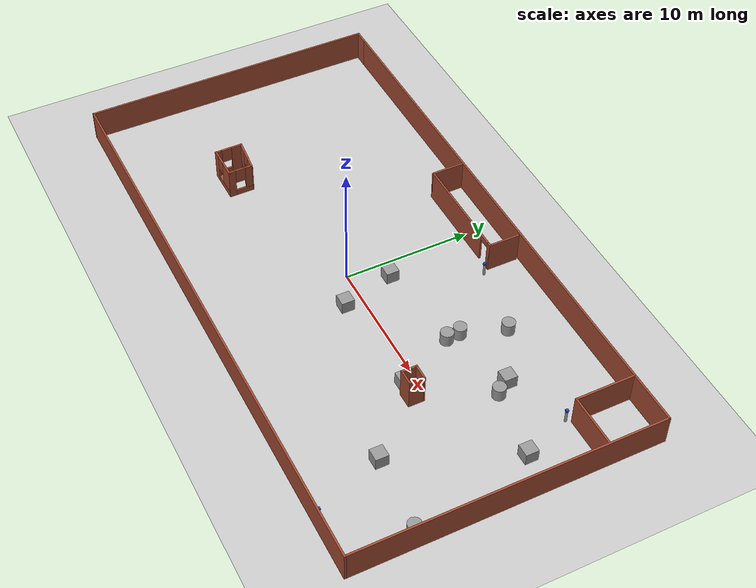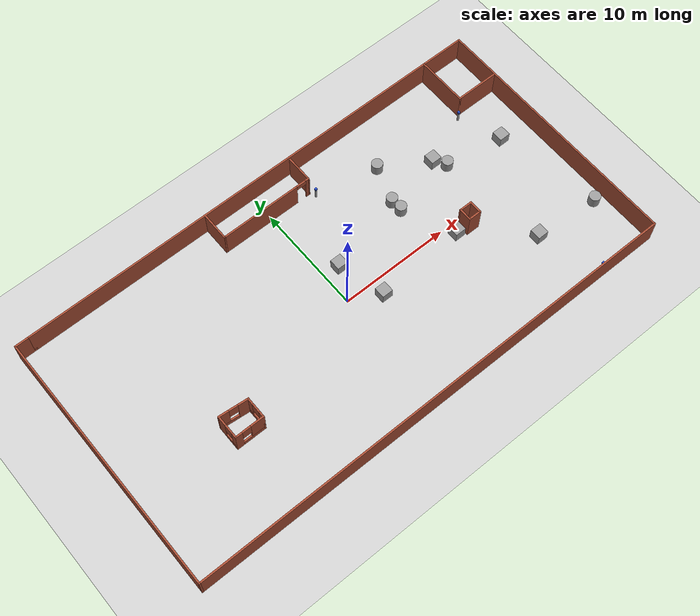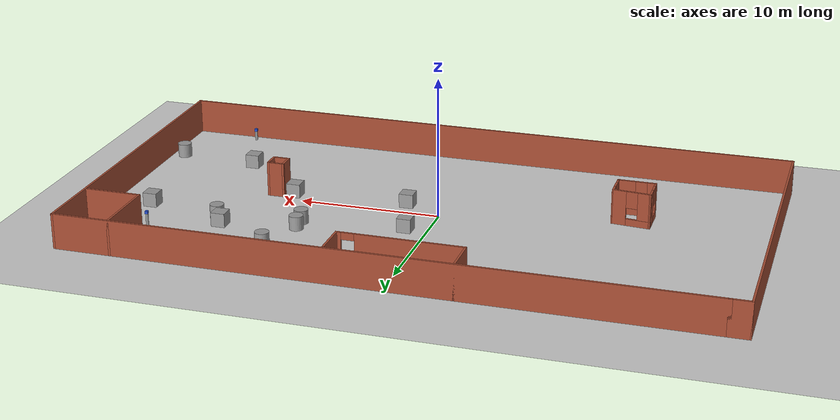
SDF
<sdf version="1.7">
 <world name="simulate_indoor">
  <model name="ground_plane">
   <static>1</static>
   <link name="link">
    <collision name="collision">
     <geometry><plane><normal>0 0 1</normal><size>100 100</size></plane></geometry>
     <surface>
      <contact><collide_bitmask>65535</collide_bitmask></contact>
      <friction><ode><mu>100</mu><mu2>50</mu2></ode></friction>
     </surface>
    </collision>
    <visual name="visual">
     <cast_shadows>0</cast_shadows>
     <geometry><plane><normal>0 0 1</normal><size>100 100</size></plane></geometry>
     <material>
      <script><uri>file://media/materials/scripts/gazebo.material</uri><name>Gazebo/Grey</name></script>
     </material>
    </visual>
   </link>
  </model>
  <model name="building_3">
   <pose>-0.060718 0.5346 0 0 -0 0</pose>
   <link name="Wall_0">
    <collision name="Wall_0_Collision">
     <geometry><box><size>44.5 0.15 2.5</size></box></geometry>
     <pose>0 0 1.25 0 -0 0</pose>
    </collision>
    <visual name="Wall_0_Visual">
     <pose>0 0 1.25 0 -0 0</pose>
     <geometry><box><size>44.5 0.15 2.5</size></box></geometry>
     <material>
      <script><uri>file://media/materials/scripts/gazebo.material</uri><name>Gazebo/Bricks</name></script>
      <ambient>1 1 1 1</ambient>
     </material>
     <meta><layer>0</layer></meta>
    </visual>
    <pose>0.624999 11.8 0 0 -0 0</pose>
   </link>
   <link name="Wall_1">
    <collision name="Wall_1_Collision">
     <geometry><box><size>23.75 0.15 2.5</size></box></geometry>
     <pose>0 0 1.25 0 -0 0</pose>
    </collision>
    <visual name="Wall_1_Visual">
     <pose>0 0 1.25 0 -0 0</pose>
     <geometry><box><size>23.75 0.15 2.5</size></box></geometry>
     <material>
      <script><uri>file://media/materials/scripts/gazebo.material</uri><name>Gazebo/Bricks</name></script>
      <ambient>1 1 1 1</ambient>
     </material>
     <meta><layer>0</layer></meta>
    </visual>
    <pose>22.8 0 0 0 -0 -1.5708</pose>
   </link>
   <link name="Wall_10">
    <collision name="Wall_10_Collision">
     <geometry><box><size>2.5 0.15 2.5</size></box></geometry>
     <pose>0 0 1.25 0 -0 0</pose>
    </collision>
    <visual name="Wall_10_Visual">
     <pose>0 0 1.25 0 -0 0</pose>
     <geometry><box><size>2.5 0.15 2.5</size></box></geometry>
     <material>
      <script><uri>file://media/materials/scripts/gazebo.material</uri><name>Gazebo/Bricks</name></script>
      <ambient>1 1 1 1</ambient>
     </material>
     <meta><layer>0</layer></meta>
    </visual>
    <pose>3.95679 10.375 0 0 -0 1.5708</pose>
   </link>
   <link name="Wall_17">
    <collision name="Wall_17_Collision">
     <geometry><box><size>4.75 0.15 2.5</size></box></geometry>
     <pose>0 0 1.25 0 -0 0</pose>
    </collision>
    <visual name="Wall_17_Visual">
     <pose>0 0 1.25 0 -0 0</pose>
     <geometry><box><size>4.75 0.15 2.5</size></box></geometry>
     <material>
      <script><uri>file://media/materials/scripts/gazebo.material</uri><name>Gazebo/Bricks</name></script>
      <ambient>1 1 1 1</ambient>
     </material>
     <meta><layer>0</layer></meta>
    </visual>
    <pose>18.7909 9.5 0 0 -0 -1.5708</pose>
   </link>
   <link name="Wall_18">
    <collision name="Wall_18_Collision">
     <geometry><box><size>4 0.15 2.5</size></box></geometry>
     <pose>0 0 1.25 0 -0 0</pose>
    </collision>
    <visual name="Wall_18_Visual">
     <pose>0 0 1.25 0 -0 0</pose>
     <geometry><box><size>4 0.15 2.5</size></box></geometry>
     <material>
      <script><uri>file://media/materials/scripts/gazebo.material</uri><name>Gazebo/Bricks</name></script>
      <ambient>1 1 1 1</ambient>
     </material>
     <meta><layer>0</layer></meta>
    </visual>
    <pose>20.7159 7.2 0 0 -0 0</pose>
   </link>
   <link name="Wall_2">
    <collision name="Wall_2_Collision">
     <geometry><box><size>45.75 0.15 2.5</size></box></geometry>
     <pose>0 0 1.25 0 -0 0</pose>
    </collision>
    <visual name="Wall_2_Visual">
     <pose>0 0 1.25 0 -0 0</pose>
     <geometry><box><size>45.75 0.15 2.5</size></box></geometry>
     <material>
      <script><uri>file://media/materials/scripts/gazebo.material</uri><name>Gazebo/Bricks</name></script>
      <ambient>1 1 1 1</ambient>
     </material>
     <meta><layer>0</layer></meta>
    </visual>
    <pose>-1e-06 -11.8 0 0 -0 3.14159</pose>
   </link>
   <link name="Wall_20">
    <pose>-14.2202 -3.74918 0 0 -0 -1.5708</pose>
    <visual name="Wall_20_Visual_0">
     <pose>-0.663415 0 1.25 0 -0 0</pose>
     <geometry><box><size>0.92317 0.15 2.5</size></box></geometry>
     <material>
      <script><uri>file://media/materials/scripts/gazebo.material</uri><name>Gazebo/Bricks</name></script>
      <ambient>1 1 1 1</ambient>
     </material>
     <meta><layer>0</layer></meta>
    </visual>
    <collision name="Wall_20_Collision_0">
     <geometry><box><size>0.92317 0.15 2.5</size></box></geometry>
     <pose>-0.663415 0 1.25 0 -0 0</pose>
    </collision>
    <visual name="Wall_20_Visual_1">
     <pose>0.461585 0 0.25 0 -0 0</pose>
     <geometry><box><size>1.32683 0.15 0.5</size></box></geometry>
     <material>
      <script><uri>file://media/materials/scripts/gazebo.material</uri><name>Gazebo/Bricks</name></script>
      <ambient>1 1 1 1</ambient>
     </material>
     <meta><layer>0</layer></meta>
    </visual>
    <collision name="Wall_20_Collision_1">
     <geometry><box><size>1.32683 0.15 0.5</size></box></geometry>
     <pose>0.461585 0 0.25 0 -0 0</pose>
    </collision>
    <visual name="Wall_20_Visual_2">
     <pose>0.861585 0 1.5 0 -0 0</pose>
     <geometry><box><size>0.52683 0.15 2</size></box></geometry>
     <material>
      <script><uri>file://media/materials/scripts/gazebo.material</uri><name>Gazebo/Bricks</name></script>
      <ambient>1 1 1 1</ambient>
     </material>
     <meta><layer>0</layer></meta>
    </visual>
    <collision name="Wall_20_Collision_2">
     <geometry><box><size>0.52683 0.15 2</size></box></geometry>
     <pose>0.861585 0 1.5 0 -0 0</pose>
    </collision>
    <visual name="Wall_20_Visual_3">
     <pose>0.19817 0 1.9 0 -0 0</pose>
     <geometry><box><size>0.8 0.15 1.2</size></box></geometry>
     <material>
      <script><uri>file://media/materials/scripts/gazebo.material</uri><name>Gazebo/Bricks</name></script>
      <ambient>1 1 1 1</ambient>
     </material>
     <meta><layer>0</layer></meta>
    </visual>
    <collision name="Wall_20_Collision_3">
     <geometry><box><size>0.8 0.15 1.2</size></box></geometry>
     <pose>0.19817 0 1.9 0 -0 0</pose>
    </collision>
   </link>
   <link name="Wall_21">
    <pose>-12.9202 -4.79918 0 0 -0 0</pose>
    <visual name="Wall_21_Visual_0">
     <pose>-1.04504 0 1.25 0 -0 0</pose>
     <geometry><box><size>0.659914 0.15 2.5</size></box></geometry>
     <material>
      <script><uri>file://media/materials/scripts/gazebo.material</uri><name>Gazebo/Bricks</name></script>
      <ambient>1 1 1 1</ambient>
     </material>
     <meta><layer>0</layer></meta>
    </visual>
    <collision name="Wall_21_Collision_0">
     <geometry><box><size>0.659914 0.15 2.5</size></box></geometry>
     <pose>-1.04504 0 1.25 0 -0 0</pose>
    </collision>
    <visual name="Wall_21_Visual_1">
     <pose>0.329957 0 0.25 0 -0 0</pose>
     <geometry><box><size>2.09009 0.15 0.5</size></box></geometry>
     <material>
      <script><uri>file://media/materials/scripts/gazebo.material</uri><name>Gazebo/Bricks</name></script>
      <ambient>1 1 1 1</ambient>
     </material>
     <meta><layer>0</layer></meta>
    </visual>
    <collision name="Wall_21_Collision_1">
     <geometry><box><size>2.09009 0.15 0.5</size></box></geometry>
     <pose>0.329957 0 0.25 0 -0 0</pose>
    </collision>
    <visual name="Wall_21_Visual_2">
     <pose>0.729957 0 1.5 0 -0 0</pose>
     <geometry><box><size>1.29009 0.15 2</size></box></geometry>
     <material>
      <script><uri>file://media/materials/scripts/gazebo.material</uri><name>Gazebo/Bricks</name></script>
      <ambient>1 1 1 1</ambient>
     </material>
     <meta><layer>0</layer></meta>
    </visual>
    <collision name="Wall_21_Collision_2">
     <geometry><box><size>1.29009 0.15 2</size></box></geometry>
     <pose>0.729957 0 1.5 0 -0 0</pose>
    </collision>
    <visual name="Wall_21_Visual_3">
     <pose>-0.315086 0 1.9 0 -0 0</pose>
     <geometry><box><size>0.8 0.15 1.2</size></box></geometry>
     <material>
      <script><uri>file://media/materials/scripts/gazebo.material</uri><name>Gazebo/Bricks</name></script>
      <ambient>1 1 1 1</ambient>
     </material>
     <meta><layer>0</layer></meta>
    </visual>
    <collision name="Wall_21_Collision_3">
     <geometry><box><size>0.8 0.15 1.2</size></box></geometry>
     <pose>-0.315086 0 1.9 0 -0 0</pose>
    </collision>
   </link>
   <link name="Wall_22">
    <pose>-11.6202 -3.87418 0 0 -0 1.5708</pose>
    <visual name="Wall_22_Visual_0">
     <pose>-0.715325 0 1.25 0 -0 0</pose>
     <geometry><box><size>0.569349 0.15 2.5</size></box></geometry>
     <material>
      <script><uri>file://media/materials/scripts/gazebo.material</uri><name>Gazebo/Bricks</name></script>
      <ambient>1 1 1 1</ambient>
     </material>
     <meta><layer>0</layer></meta>
    </visual>
    <collision name="Wall_22_Collision_0">
     <geometry><box><size>0.569349 0.15 2.5</size></box></geometry>
     <pose>-0.715325 0 1.25 0 -0 0</pose>
    </collision>
    <visual name="Wall_22_Visual_1">
     <pose>0.284675 0 0.25 0 -0 0</pose>
     <geometry><box><size>1.43065 0.15 0.5</size></box></geometry>
     <material>
      <script><uri>file://media/materials/scripts/gazebo.material</uri><name>Gazebo/Bricks</name></script>
      <ambient>1 1 1 1</ambient>
     </material>
     <meta><layer>0</layer></meta>
    </visual>
    <collision name="Wall_22_Collision_1">
     <geometry><box><size>1.43065 0.15 0.5</size></box></geometry>
     <pose>0.284675 0 0.25 0 -0 0</pose>
    </collision>
    <visual name="Wall_22_Visual_2">
     <pose>0.684675 0 1.5 0 -0 0</pose>
     <geometry><box><size>0.630651 0.15 2</size></box></geometry>
     <material>
      <script><uri>file://media/materials/scripts/gazebo.material</uri><name>Gazebo/Bricks</name></script>
      <ambient>1 1 1 1</ambient>
     </material>
     <meta><layer>0</layer></meta>
    </visual>
    <collision name="Wall_22_Collision_2">
     <geometry><box><size>0.630651 0.15 2</size></box></geometry>
     <pose>0.684675 0 1.5 0 -0 0</pose>
    </collision>
    <visual name="Wall_22_Visual_3">
     <pose>-0.030651 0 1.9 0 -0 0</pose>
     <geometry><box><size>0.8 0.15 1.2</size></box></geometry>
     <material>
      <script><uri>file://media/materials/scripts/gazebo.material</uri><name>Gazebo/Bricks</name></script>
      <ambient>1 1 1 1</ambient>
     </material>
     <meta><layer>0</layer></meta>
    </visual>
    <collision name="Wall_22_Collision_3">
     <geometry><box><size>0.8 0.15 1.2</size></box></geometry>
     <pose>-0.030651 0 1.9 0 -0 0</pose>
    </collision>
   </link>
   <link name="Wall_23">
    <pose>-12.9202 -2.82418 0 0 -0 3.04573</pose>
    <visual name="Wall_23_Visual_0">
     <pose>-0.870697 0 1.25 0 -0 0</pose>
     <geometry><box><size>1.0206 0.15 2.5</size></box></geometry>
     <material>
      <script><uri>file://media/materials/scripts/gazebo.material</uri><name>Gazebo/Bricks</name></script>
      <ambient>1 1 1 1</ambient>
     </material>
     <meta><layer>0</layer></meta>
    </visual>
    <collision name="Wall_23_Collision_0">
     <geometry><box><size>1.0206 0.15 2.5</size></box></geometry>
     <pose>-0.870697 0 1.25 0 -0 0</pose>
    </collision>
    <visual name="Wall_23_Visual_1">
     <pose>0.510298 0 0.25 0 -0 0</pose>
     <geometry><box><size>1.7414 0.15 0.5</size></box></geometry>
     <material>
      <script><uri>file://media/materials/scripts/gazebo.material</uri><name>Gazebo/Bricks</name></script>
      <ambient>1 1 1 1</ambient>
     </material>
     <meta><layer>0</layer></meta>
    </visual>
    <collision name="Wall_23_Collision_1">
     <geometry><box><size>1.7414 0.15 0.5</size></box></geometry>
     <pose>0.510298 0 0.25 0 -0 0</pose>
    </collision>
    <visual name="Wall_23_Visual_2">
     <pose>0.910298 0 1.5 0 -0 0</pose>
     <geometry><box><size>0.941395 0.15 2</size></box></geometry>
     <material>
      <script><uri>file://media/materials/scripts/gazebo.material</uri><name>Gazebo/Bricks</name></script>
      <ambient>1 1 1 1</ambient>
     </material>
     <meta><layer>0</layer></meta>
    </visual>
    <collision name="Wall_23_Collision_2">
     <geometry><box><size>0.941395 0.15 2</size></box></geometry>
     <pose>0.910298 0 1.5 0 -0 0</pose>
    </collision>
    <visual name="Wall_23_Visual_3">
     <pose>0.039601 0 1.9 0 -0 0</pose>
     <geometry><box><size>0.8 0.15 1.2</size></box></geometry>
     <material>
      <script><uri>file://media/materials/scripts/gazebo.material</uri><name>Gazebo/Bricks</name></script>
      <ambient>1 1 1 1</ambient>
     </material>
     <meta><layer>0</layer></meta>
    </visual>
    <collision name="Wall_23_Collision_3">
     <geometry><box><size>0.8 0.15 1.2</size></box></geometry>
     <pose>0.039601 0 1.9 0 -0 0</pose>
    </collision>
   </link>
   <link name="Wall_25">
    <collision name="Wall_25_Collision">
     <geometry><box><size>1.25 0.15 2.5</size></box></geometry>
     <pose>0 0 1.25 0 -0 0</pose>
    </collision>
    <visual name="Wall_25_Visual">
     <pose>0 0 1.25 0 -0 0</pose>
     <geometry><box><size>1.25 0.15 2.5</size></box></geometry>
     <material>
      <script><uri>file://media/materials/scripts/gazebo.material</uri><name>Gazebo/Bricks</name></script>
      <ambient>1 1 1 1</ambient>
     </material>
     <meta><layer>0</layer></meta>
    </visual>
    <pose>11.6215 -1.48359 0 0 -0 -1.5708</pose>
   </link>
   <link name="Wall_26">
    <collision name="Wall_26_Collision">
     <geometry><box><size>1.25 0.15 2.5</size></box></geometry>
     <pose>0 0 1.25 0 -0 0</pose>
    </collision>
    <visual name="Wall_26_Visual">
     <pose>0 0 1.25 0 -0 0</pose>
     <geometry><box><size>1.25 0.15 2.5</size></box></geometry>
     <material>
      <script><uri>file://media/materials/scripts/gazebo.material</uri><name>Gazebo/Bricks</name></script>
      <ambient>1 1 1 1</ambient>
     </material>
     <meta><layer>0</layer></meta>
    </visual>
    <pose>12.1715 -2.0336 0 0 -0 0</pose>
   </link>
   <link name="Wall_27">
    <collision name="Wall_27_Collision">
     <geometry><box><size>1.25 0.15 2.5</size></box></geometry>
     <pose>0 0 1.25 0 -0 0</pose>
    </collision>
    <visual name="Wall_27_Visual">
     <pose>0 0 1.25 0 -0 0</pose>
     <geometry><box><size>1.25 0.15 2.5</size></box></geometry>
     <material>
      <script><uri>file://media/materials/scripts/gazebo.material</uri><name>Gazebo/Bricks</name></script>
      <ambient>1 1 1 1</ambient>
     </material>
     <meta><layer>0</layer></meta>
    </visual>
    <pose>12.7215 -1.48359 0 0 -0 1.5708</pose>
   </link>
   <link name="Wall_28">
    <collision name="Wall_28_Collision">
     <geometry><box><size>1.25 0.15 2.5</size></box></geometry>
     <pose>0 0 1.25 0 -0 0</pose>
    </collision>
    <visual name="Wall_28_Visual">
     <pose>0 0 1.25 0 -0 0</pose>
     <geometry><box><size>1.25 0.15 2.5</size></box></geometry>
     <material>
      <script><uri>file://media/materials/scripts/gazebo.material</uri><name>Gazebo/Bricks</name></script>
      <ambient>1 1 1 1</ambient>
     </material>
     <meta><layer>0</layer></meta>
    </visual>
    <pose>12.1715 -0.933595 0 0 -0 3.14159</pose>
   </link>
   <link name="Wall_3">
    <collision name="Wall_3_Collision">
     <geometry><box><size>23.75 0.15 2.5</size></box></geometry>
     <pose>0 0 1.25 0 -0 0</pose>
    </collision>
    <visual name="Wall_3_Visual">
     <pose>0 0 1.25 0 -0 0</pose>
     <geometry><box><size>23.75 0.15 2.5</size></box></geometry>
     <material>
      <script><uri>file://media/materials/scripts/gazebo.material</uri><name>Gazebo/Bricks</name></script>
      <ambient>1 1 1 1</ambient>
     </material>
     <meta><layer>0</layer></meta>
    </visual>
    <pose>-22.8 0 0 0 -0 1.5708</pose>
   </link>
   <link name="Wall_4">
    <collision name="Wall_4_Collision">
     <geometry><box><size>1.5 0.15 2.5</size></box></geometry>
     <pose>0 0 1.25 0 -0 0</pose>
    </collision>
    <visual name="Wall_4_Visual">
     <pose>0 0 1.25 0 -0 0</pose>
     <geometry><box><size>1.5 0.15 2.5</size></box></geometry>
     <material>
      <script><uri>file://media/materials/scripts/gazebo.material</uri><name>Gazebo/Bricks</name></script>
      <ambient>1 1 1 1</ambient>
     </material>
     <meta><layer>0</layer></meta>
    </visual>
    <pose>-22.125 11.8 0 0 -0 0</pose>
   </link>
   <link name="Wall_8">
    <collision name="Wall_8_Collision">
     <geometry><box><size>2.75 0.15 2.5</size></box></geometry>
     <pose>0 0 1.25 0 -0 0</pose>
    </collision>
    <visual name="Wall_8_Visual">
     <pose>0 0 1.25 0 -0 0</pose>
     <geometry><box><size>2.75 0.15 2.5</size></box></geometry>
     <material>
      <script><uri>file://media/materials/scripts/gazebo.material</uri><name>Gazebo/Bricks</name></script>
      <ambient>1 1 1 1</ambient>
     </material>
     <meta><layer>0</layer></meta>
    </visual>
    <pose>-4.64321 10.5 0 0 -0 -1.5708</pose>
   </link>
   <link name="Wall_9">
    <pose>-0.343211 9.2 0 0 -0 0</pose>
    <visual name="Wall_9_Visual_0">
     <pose>-0.647828 0 1.25 0 -0 0</pose>
     <geometry><box><size>7.45434 0.15 2.5</size></box></geometry>
     <material>
      <script><uri>file://media/materials/scripts/gazebo.material</uri><name>Gazebo/Bricks</name></script>
      <ambient>1 1 1 1</ambient>
     </material>
     <meta><layer>0</layer></meta>
    </visual>
    <collision name="Wall_9_Collision_0">
     <geometry><box><size>7.45434 0.15 2.5</size></box></geometry>
     <pose>-0.647828 0 1.25 0 -0 0</pose>
    </collision>
    <visual name="Wall_9_Visual_1">
     <pose>4.17717 0 1.25 0 -0 0</pose>
     <geometry><box><size>0.395657 0.15 2.5</size></box></geometry>
     <material>
      <script><uri>file://media/materials/scripts/gazebo.material</uri><name>Gazebo/Bricks</name></script>
      <ambient>1 1 1 1</ambient>
     </material>
     <meta><layer>0</layer></meta>
    </visual>
    <collision name="Wall_9_Collision_1">
     <geometry><box><size>0.395657 0.15 2.5</size></box></geometry>
     <pose>4.17717 0 1.25 0 -0 0</pose>
    </collision>
    <visual name="Wall_9_Visual_2">
     <pose>3.52934 0 2.25 0 -0 0</pose>
     <geometry><box><size>0.9 0.15 0.5</size></box></geometry>
     <material>
      <script><uri>file://media/materials/scripts/gazebo.material</uri><name>Gazebo/Bricks</name></script>
      <ambient>1 1 1 1</ambient>
     </material>
     <meta><layer>0</layer></meta>
    </visual>
    <collision name="Wall_9_Collision_2">
     <geometry><box><size>0.9 0.15 0.5</size></box></geometry>
     <pose>3.52934 0 2.25 0 -0 0</pose>
    </collision>
   </link>
   <static>1</static>
  </model>
  <model name="UWB_1">
   <link name="link_1">
    <inertial>
     <mass>1</mass>
     <inertia><ixx>0.145833</ixx><ixy>0</ixy><ixz>0</ixz><iyy>0.145833</iyy><iyz>0</iyz><izz>0.125</izz></inertia>
    </inertial>
    <pose>0 0 0.5 0 -0 0</pose>
    <visual name="visual">
     <geometry><cylinder><radius>0.1</radius><length>1</length></cylinder></geometry>
     <material>
      <lighting>1</lighting>
      <script><uri>file://media/materials/scripts/gazebo.material</uri><name>Gazebo/Grey</name></script>
     </material>
    </visual>
    <collision name="collision">
     <geometry><cylinder><radius>0.1</radius><length>1</length></cylinder></geometry>
     <surface>
      <friction>
       <ode><mu>1</mu><mu2>1</mu2><fdir1>0 0 0</fdir1><slip1>0</slip1><slip2>0</slip2></ode>
       <torsional>
        <coefficient>1</coefficient>
        <patch_radius>0</patch_radius>
        <surface_radius>0</surface_radius>
        <use_patch_radius>1</use_patch_radius>
        <ode><slip>0</slip></ode>
       </torsional>
      </friction>
      <bounce><restitution_coefficient>0</restitution_coefficient><threshold>1e+06</threshold></bounce>
      <contact>
       <collide_without_contact>0</collide_without_contact>
       <collide_without_contact_bitmask>1</collide_without_contact_bitmask>
       <collide_bitmask>1</collide_bitmask>
       <ode>
        <soft_cfm>0</soft_cfm>
        <soft_erp>0.2</soft_erp>
        <kp>1e+13</kp>
        <kd>1</kd>
        <max_vel>0.01</max_vel>
        <min_depth>0</min_depth>
       </ode>
       <bullet>
        <split_impulse>1</split_impulse>
        <split_impulse_penetration_threshold>-0.01</split_impulse_penetration_threshold>
        <soft_cfm>0</soft_cfm>
        <soft_erp>0.2</soft_erp>
        <kp>1e+13</kp>
        <kd>1</kd>
       </bullet>
      </contact>
     </surface>
    </collision>
   </link>
   <link name="link_2">
    <inertial>
     <mass>1</mass>
     <inertia>
      <ixx>0.166667</ixx>
      <ixy>0</ixy>
      <ixz>0</ixz>
      <iyy>0.166667</iyy>
      <iyz>0</iyz>
      <izz>0.166667</izz>
     </inertia>
    </inertial>
    <pose>0 0 1.1 0 -0 0</pose>
    <visual name="visual">
     <geometry><box><size>0.2 0.2 0.2</size></box></geometry>
     <material>
      <lighting>1</lighting>
      <script><uri>file://media/materials/scripts/gazebo.material</uri><name>Gazebo/Blue</name></script>
      <shader type="vertex"><normal_map>__default__</normal_map></shader>
     </material>
    </visual>
    <collision name="collision">
     <geometry><box><size>0.2 0.2 0.2</size></box></geometry>
     <surface>
      <friction>
       <ode><mu>1</mu><mu2>1</mu2><fdir1>0 0 0</fdir1><slip1>0</slip1><slip2>0</slip2></ode>
       <torsional>
        <coefficient>1</coefficient>
        <patch_radius>0</patch_radius>
        <surface_radius>0</surface_radius>
        <use_patch_radius>1</use_patch_radius>
        <ode><slip>0</slip></ode>
       </torsional>
      </friction>
      <bounce><restitution_coefficient>0</restitution_coefficient><threshold>1e+06</threshold></bounce>
      <contact>
       <collide_without_contact>0</collide_without_contact>
       <collide_without_contact_bitmask>1</collide_without_contact_bitmask>
       <collide_bitmask>1</collide_bitmask>
       <ode>
        <soft_cfm>0</soft_cfm>
        <soft_erp>0.2</soft_erp>
        <kp>1e+13</kp>
        <kd>1</kd>
        <max_vel>0.01</max_vel>
        <min_depth>0</min_depth>
       </ode>
       <bullet>
        <split_impulse>1</split_impulse>
        <split_impulse_penetration_threshold>-0.01</split_impulse_penetration_threshold>
        <soft_cfm>0</soft_cfm>
        <soft_erp>0.2</soft_erp>
        <kp>1e+13</kp>
        <kd>1</kd>
       </bullet>
      </contact>
     </surface>
    </collision>
   </link>
   <static>1</static>
   <pose>17.9216 -10.7388 -0.357221 0 -0 0</pose>
  </model>
  <model name="UWB_2">
   <link name="link_1">
    <inertial>
     <mass>1</mass>
     <inertia><ixx>0.145833</ixx><ixy>0</ixy><ixz>0</ixz><iyy>0.145833</iyy><iyz>0</iyz><izz>0.125</izz></inertia>
    </inertial>
    <pose>0 0 0.5 0 -0 0</pose>
    <visual name="visual">
     <geometry><cylinder><radius>0.1</radius><length>1</length></cylinder></geometry>
     <material>
      <lighting>1</lighting>
      <script><uri>file://media/materials/scripts/gazebo.material</uri><name>Gazebo/Grey</name></script>
     </material>
    </visual>
    <collision name="collision">
     <geometry><cylinder><radius>0.1</radius><length>1</length></cylinder></geometry>
     <surface>
      <friction>
       <ode><mu>1</mu><mu2>1</mu2><fdir1>0 0 0</fdir1><slip1>0</slip1><slip2>0</slip2></ode>
       <torsional>
        <coefficient>1</coefficient>
        <patch_radius>0</patch_radius>
        <surface_radius>0</surface_radius>
        <use_patch_radius>1</use_patch_radius>
        <ode><slip>0</slip></ode>
       </torsional>
      </friction>
      <bounce><restitution_coefficient>0</restitution_coefficient><threshold>1e+06</threshold></bounce>
      <contact>
       <collide_without_contact>0</collide_without_contact>
       <collide_without_contact_bitmask>1</collide_without_contact_bitmask>
       <collide_bitmask>1</collide_bitmask>
       <ode>
        <soft_cfm>0</soft_cfm>
        <soft_erp>0.2</soft_erp>
        <kp>1e+13</kp>
        <kd>1</kd>
        <max_vel>0.01</max_vel>
        <min_depth>0</min_depth>
       </ode>
       <bullet>
        <split_impulse>1</split_impulse>
        <split_impulse_penetration_threshold>-0.01</split_impulse_penetration_threshold>
        <soft_cfm>0</soft_cfm>
        <soft_erp>0.2</soft_erp>
        <kp>1e+13</kp>
        <kd>1</kd>
       </bullet>
      </contact>
     </surface>
    </collision>
   </link>
   <link name="link_2">
    <inertial>
     <mass>1</mass>
     <inertia>
      <ixx>0.166667</ixx>
      <ixy>0</ixy>
      <ixz>0</ixz>
      <iyy>0.166667</iyy>
      <iyz>0</iyz>
      <izz>0.166667</izz>
     </inertia>
    </inertial>
    <pose>0 0 1.1 0 -0 0</pose>
    <visual name="visual">
     <geometry><box><size>0.2 0.2 0.2</size></box></geometry>
     <material>
      <lighting>1</lighting>
      <script><uri>file://media/materials/scripts/gazebo.material</uri><name>Gazebo/Blue</name></script>
      <shader type="vertex"><normal_map>__default__</normal_map></shader>
     </material>
    </visual>
    <collision name="collision">
     <geometry><box><size>0.2 0.2 0.2</size></box></geometry>
     <surface>
      <friction>
       <ode><mu>1</mu><mu2>1</mu2><fdir1>0 0 0</fdir1><slip1>0</slip1><slip2>0</slip2></ode>
       <torsional>
        <coefficient>1</coefficient>
        <patch_radius>0</patch_radius>
        <surface_radius>0</surface_radius>
        <use_patch_radius>1</use_patch_radius>
        <ode><slip>0</slip></ode>
       </torsional>
      </friction>
      <bounce><restitution_coefficient>0</restitution_coefficient><threshold>1e+06</threshold></bounce>
      <contact>
       <collide_without_contact>0</collide_without_contact>
       <collide_without_contact_bitmask>1</collide_without_contact_bitmask>
       <collide_bitmask>1</collide_bitmask>
       <ode>
        <soft_cfm>0</soft_cfm>
        <soft_erp>0.2</soft_erp>
        <kp>1e+13</kp>
        <kd>1</kd>
        <max_vel>0.01</max_vel>
        <min_depth>0</min_depth>
       </ode>
       <bullet>
        <split_impulse>1</split_impulse>
        <split_impulse_penetration_threshold>-0.01</split_impulse_penetration_threshold>
        <soft_cfm>0</soft_cfm>
        <soft_erp>0.2</soft_erp>
        <kp>1e+13</kp>
        <kd>1</kd>
       </bullet>
      </contact>
     </surface>
    </collision>
   </link>
   <static>1</static>
   <pose>4.22868 9.2032 0 0 -0 0</pose>
  </model>
  <model name="UWB_4">
   <link name="link_1">
    <inertial>
     <mass>1</mass>
     <inertia><ixx>0.145833</ixx><ixy>0</ixy><ixz>0</ixz><iyy>0.145833</iyy><iyz>0</iyz><izz>0.125</izz></inertia>
    </inertial>
    <pose>0 0 0.5 0 -0 0</pose>
    <visual name="visual">
     <geometry><cylinder><radius>0.1</radius><length>1</length></cylinder></geometry>
     <material>
      <lighting>1</lighting>
      <script><uri>file://media/materials/scripts/gazebo.material</uri><name>Gazebo/Grey</name></script>
     </material>
    </visual>
    <collision name="collision">
     <geometry><cylinder><radius>0.1</radius><length>1</length></cylinder></geometry>
     <surface>
      <friction>
       <ode><mu>1</mu><mu2>1</mu2><fdir1>0 0 0</fdir1><slip1>0</slip1><slip2>0</slip2></ode>
       <torsional>
        <coefficient>1</coefficient>
        <patch_radius>0</patch_radius>
        <surface_radius>0</surface_radius>
        <use_patch_radius>1</use_patch_radius>
        <ode><slip>0</slip></ode>
       </torsional>
      </friction>
      <bounce><restitution_coefficient>0</restitution_coefficient><threshold>1e+06</threshold></bounce>
      <contact>
       <collide_without_contact>0</collide_without_contact>
       <collide_without_contact_bitmask>1</collide_without_contact_bitmask>
       <collide_bitmask>1</collide_bitmask>
       <ode>
        <soft_cfm>0</soft_cfm>
        <soft_erp>0.2</soft_erp>
        <kp>1e+13</kp>
        <kd>1</kd>
        <max_vel>0.01</max_vel>
        <min_depth>0</min_depth>
       </ode>
       <bullet>
        <split_impulse>1</split_impulse>
        <split_impulse_penetration_threshold>-0.01</split_impulse_penetration_threshold>
        <soft_cfm>0</soft_cfm>
        <soft_erp>0.2</soft_erp>
        <kp>1e+13</kp>
        <kd>1</kd>
       </bullet>
      </contact>
     </surface>
    </collision>
   </link>
   <link name="link_2">
    <inertial>
     <mass>1</mass>
     <inertia>
      <ixx>0.166667</ixx>
      <ixy>0</ixy>
      <ixz>0</ixz>
      <iyy>0.166667</iyy>
      <iyz>0</iyz>
      <izz>0.166667</izz>
     </inertia>
    </inertial>
    <pose>0 0 1.1 0 -0 0</pose>
    <visual name="visual">
     <geometry><box><size>0.2 0.2 0.2</size></box></geometry>
     <material>
      <lighting>1</lighting>
      <script><uri>file://media/materials/scripts/gazebo.material</uri><name>Gazebo/Blue</name></script>
      <shader type="vertex"><normal_map>__default__</normal_map></shader>
     </material>
    </visual>
    <collision name="collision">
     <geometry><box><size>0.2 0.2 0.2</size></box></geometry>
     <surface>
      <friction>
       <ode><mu>1</mu><mu2>1</mu2><fdir1>0 0 0</fdir1><slip1>0</slip1><slip2>0</slip2></ode>
       <torsional>
        <coefficient>1</coefficient>
        <patch_radius>0</patch_radius>
        <surface_radius>0</surface_radius>
        <use_patch_radius>1</use_patch_radius>
        <ode><slip>0</slip></ode>
       </torsional>
      </friction>
      <bounce><restitution_coefficient>0</restitution_coefficient><threshold>1e+06</threshold></bounce>
      <contact>
       <collide_without_contact>0</collide_without_contact>
       <collide_without_contact_bitmask>1</collide_without_contact_bitmask>
       <collide_bitmask>1</collide_bitmask>
       <ode>
        <soft_cfm>0</soft_cfm>
        <soft_erp>0.2</soft_erp>
        <kp>1e+13</kp>
        <kd>1</kd>
        <max_vel>0.01</max_vel>
        <min_depth>0</min_depth>
       </ode>
       <bullet>
        <split_impulse>1</split_impulse>
        <split_impulse_penetration_threshold>-0.01</split_impulse_penetration_threshold>
        <soft_cfm>0</soft_cfm>
        <soft_erp>0.2</soft_erp>
        <kp>1e+13</kp>
        <kd>1</kd>
       </bullet>
      </contact>
     </surface>
    </collision>
   </link>
   <static>1</static>
   <pose>18.429 7.35495 0 0 -0 0</pose>
  </model>
  <model name="unit_cylinder">
   <pose>8.71201 3.59661 0.499997 3e-06 1e-06 -0</pose>
   <link name="link">
    <inertial>
     <mass>1</mass>
     <inertia><ixx>0.145833</ixx><ixy>0</ixy><ixz>0</ixz><iyy>0.145833</iyy><iyz>0</iyz><izz>0.125</izz></inertia>
    </inertial>
    <collision name="collision">
     <geometry><cylinder><radius>0.5</radius><length>1</length></cylinder></geometry>
    </collision>
    <visual name="visual">
     <geometry><cylinder><radius>0.5</radius><length>1</length></cylinder></geometry>
     <material>
      <script><name>Gazebo/Grey</name><uri>file://media/materials/scripts/gazebo.material</uri></script>
     </material>
    </visual>
   </link>
  </model>
  <model name="unit_cylinder_2">
   <pose>8.65413 4.6716 0.499996 -3e-06 3e-06 0</pose>
   <link name="link">
    <inertial>
     <mass>1</mass>
     <inertia><ixx>0.145833</ixx><ixy>0</ixy><ixz>0</ixz><iyy>0.145833</iyy><iyz>0</iyz><izz>0.125</izz></inertia>
    </inertial>
    <collision name="collision">
     <geometry><cylinder><radius>0.5</radius><length>1</length></cylinder></geometry>
    </collision>
    <visual name="visual">
     <geometry><cylinder><radius>0.5</radius><length>1</length></cylinder></geometry>
     <material>
      <script><name>Gazebo/Grey</name><uri>file://media/materials/scripts/gazebo.material</uri></script>
     </material>
    </visual>
   </link>
  </model>
  <model name="unit_cylinder_5">
   <pose>14.569 4.42847 0.499994 3e-06 -3e-06 0</pose>
   <link name="link">
    <inertial>
     <mass>1</mass>
     <inertia><ixx>0.145833</ixx><ixy>0</ixy><ixz>0</ixz><iyy>0.145833</iyy><iyz>0</iyz><izz>0.125</izz></inertia>
    </inertial>
    <collision name="collision">
     <geometry><cylinder><radius>0.5</radius><length>1</length></cylinder></geometry>
    </collision>
    <visual name="visual">
     <geometry><cylinder><radius>0.5</radius><length>1</length></cylinder></geometry>
     <material>
      <script><name>Gazebo/Grey</name><uri>file://media/materials/scripts/gazebo.material</uri></script>
     </material>
    </visual>
   </link>
  </model>
  <model name="unit_cylinder_6">
   <pose>21.7024 -5.89255 0.499994 3e-06 -3e-06 0</pose>
   <link name="link">
    <inertial>
     <mass>1</mass>
     <inertia><ixx>0.145833</ixx><ixy>0</ixy><ixz>0</ixz><iyy>0.145833</iyy><iyz>0</iyz><izz>0.125</izz></inertia>
    </inertial>
    <collision name="collision">
     <geometry><cylinder><radius>0.5</radius><length>1</length></cylinder></geometry>
    </collision>
    <visual name="visual">
     <geometry><cylinder><radius>0.5</radius><length>1</length></cylinder></geometry>
     <material>
      <script><name>Gazebo/Grey</name><uri>file://media/materials/scripts/gazebo.material</uri></script>
     </material>
    </visual>
   </link>
  </model>
  <model name="unit_box_2">
   <pose>1.47846 2.82768 0.499995 1e-05 -0 0</pose>
   <link name="link">
    <inertial>
     <mass>1</mass>
     <inertia>
      <ixx>0.166667</ixx>
      <ixy>0</ixy>
      <ixz>0</ixz>
      <iyy>0.166667</iyy>
      <iyz>0</iyz>
      <izz>0.166667</izz>
     </inertia>
    </inertial>
    <collision name="collision"><geometry><box><size>1 1 1</size></box></geometry></collision>
    <visual name="visual">
     <geometry><box><size>1 1 1</size></box></geometry>
     <material>
      <script><name>Gazebo/Grey</name><uri>file://media/materials/scripts/gazebo.material</uri></script>
     </material>
    </visual>
   </link>
  </model>
  <model name="unit_box_3">
   <pose>10.8711 -0.911677 0.499995 0 1e-05 0</pose>
   <link name="link">
    <inertial>
     <mass>1</mass>
     <inertia>
      <ixx>0.166667</ixx>
      <ixy>0</ixy>
      <ixz>0</ixz>
      <iyy>0.166667</iyy>
      <iyz>0</iyz>
      <izz>0.166667</izz>
     </inertia>
    </inertial>
    <collision name="collision"><geometry><box><size>1 1 1</size></box></geometry></collision>
    <visual name="visual">
     <geometry><box><size>1 1 1</size></box></geometry>
     <material>
      <script><name>Gazebo/Grey</name><uri>file://media/materials/scripts/gazebo.material</uri></script>
     </material>
    </visual>
   </link>
  </model>
  <model name="unit_box_4">
   <pose>15.8547 -5.40505 0.499995 0 1e-05 0</pose>
   <link name="link">
    <inertial>
     <mass>1</mass>
     <inertia>
      <ixx>0.166667</ixx>
      <ixy>0</ixy>
      <ixz>0</ixz>
      <iyy>0.166667</iyy>
      <iyz>0</iyz>
      <izz>0.166667</izz>
     </inertia>
    </inertial>
    <collision name="collision"><geometry><box><size>1 1 1</size></box></geometry></collision>
    <visual name="visual">
     <geometry><box><size>1 1 1</size></box></geometry>
     <material>
      <script><name>Gazebo/Grey</name><uri>file://media/materials/scripts/gazebo.material</uri></script>
     </material>
    </visual>
   </link>
  </model>
  <model name="unit_box_5">
   <pose>13.8689 5.49369 0.499995 1e-05 -0 0</pose>
   <link name="link">
    <inertial>
     <mass>1</mass>
     <inertia>
      <ixx>0.166667</ixx>
      <ixy>0</ixy>
      <ixz>0</ixz>
      <iyy>0.166667</iyy>
      <iyz>0</iyz>
      <izz>0.166667</izz>
     </inertia>
    </inertial>
    <collision name="collision"><geometry><box><size>1 1 1</size></box></geometry></collision>
    <visual name="visual">
     <geometry><box><size>1 1 1</size></box></geometry>
     <material>
      <script><name>Gazebo/Grey</name><uri>file://media/materials/scripts/gazebo.material</uri></script>
     </material>
    </visual>
   </link>
  </model>
  <model name="unit_cylinder_9">
   <pose>9.81531 7.95336 0.499996 4e-06 2e-06 -0</pose>
   <link name="link">
    <inertial>
     <mass>1</mass>
     <inertia><ixx>0.145833</ixx><ixy>0</ixy><ixz>0</ixz><iyy>0.145833</iyy><iyz>0</iyz><izz>0.125</izz></inertia>
    </inertial>
    <collision name="collision">
     <geometry><cylinder><radius>0.5</radius><length>1</length></cylinder></geometry>
    </collision>
    <visual name="visual">
     <geometry><cylinder><radius>0.5</radius><length>1</length></cylinder></geometry>
     <material>
      <script><name>Gazebo/Grey</name><uri>file://media/materials/scripts/gazebo.material</uri></script>
     </material>
    </visual>
   </link>
  </model>
  <model name="unit_box_6">
   <pose>19.857 3.55423 0.499995 1e-05 -0 0</pose>
   <link name="link">
    <inertial>
     <mass>1</mass>
     <inertia>
      <ixx>0.166667</ixx>
      <ixy>0</ixy>
      <ixz>0</ixz>
      <iyy>0.166667</iyy>
      <iyz>0</iyz>
      <izz>0.166667</izz>
     </inertia>
    </inertial>
    <collision name="collision"><geometry><box><size>1 1 1</size></box></geometry></collision>
    <visual name="visual">
     <geometry><box><size>1 1 1</size></box></geometry>
     <material>
      <script><name>Gazebo/Grey</name><uri>file://media/materials/scripts/gazebo.material</uri></script>
     </material>
    </visual>
   </link>
  </model>
  <model name="unit_box_8">
   <pose>2.63625 -1.3781 0.499995 1e-05 -0 0</pose>
   <link name="link">
    <inertial>
     <mass>1</mass>
     <inertia>
      <ixx>0.166667</ixx>
      <ixy>0</ixy>
      <ixz>0</ixz>
      <iyy>0.166667</iyy>
      <iyz>0</iyz>
      <izz>0.166667</izz>
     </inertia>
    </inertial>
    <collision name="collision"><geometry><box><size>1 1 1</size></box></geometry></collision>
    <visual name="visual">
     <geometry><box><size>1 1 1</size></box></geometry>
     <material>
      <script><name>Gazebo/Grey</name><uri>file://media/materials/scripts/gazebo.material</uri></script>
     </material>
    </visual>
   </link>
  </model>
 </world>
</sdf>
